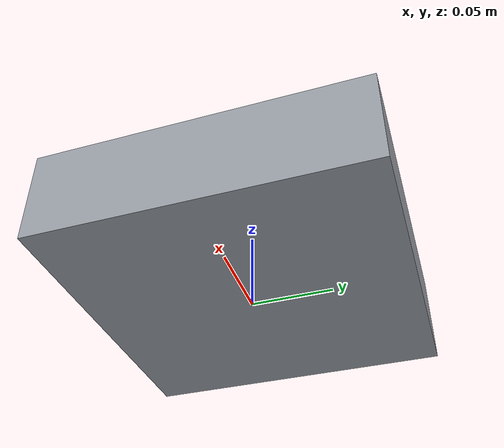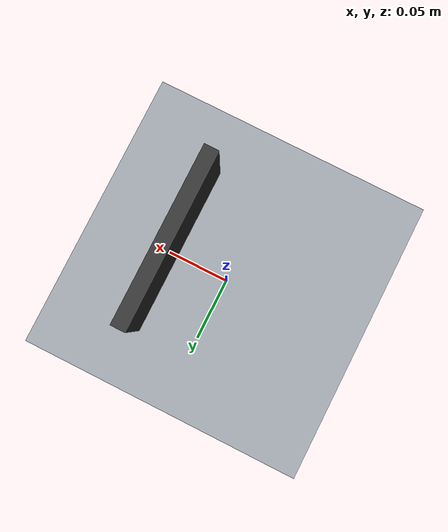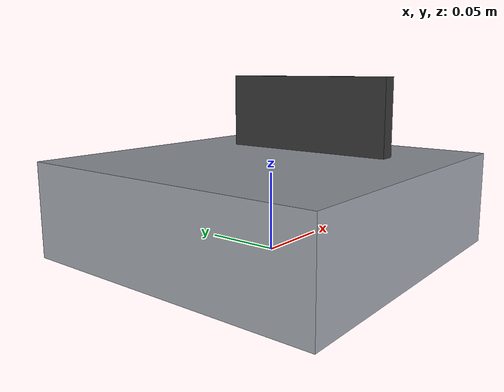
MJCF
<?xml version="1.0" encoding="utf-8"?>
<mujoco model="cell_disassembly_station">
  <compiler angle="radian" autolimits="true"/>
  <default>
    <default class="body"><geom contype="1" conaffinity="1"/></default>
  </default>
  <worldbody>
    <body name="base">
      <geom type="box" size="0.1 0.1 0.03" pos="0 0 0.03" rgba="0.6 0.62 0.65 1" class="body"/>
      <body name="tool_arm" pos="0.04 0 0.07">
        <joint name="tool_arm_joint" type="hinge" axis="0 1 0" range="-1.0 0.2" damping="0.5" frictionloss="0.5"/>
  <geom type="box" size="0.005 0.06 0.04" pos="0 0 0" rgba="0.2 0.2 0.2 1" class="body"/>
      </body>
    </body>
  </worldbody>
</mujoco>
